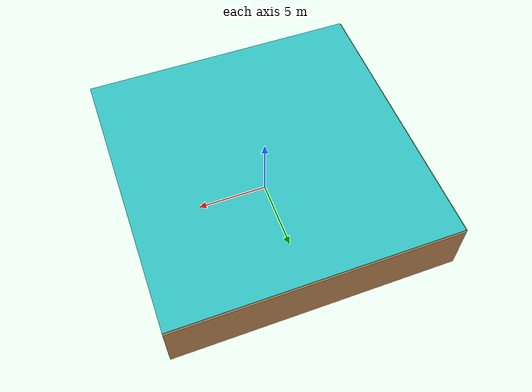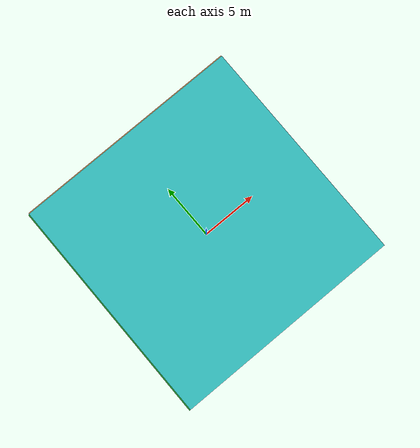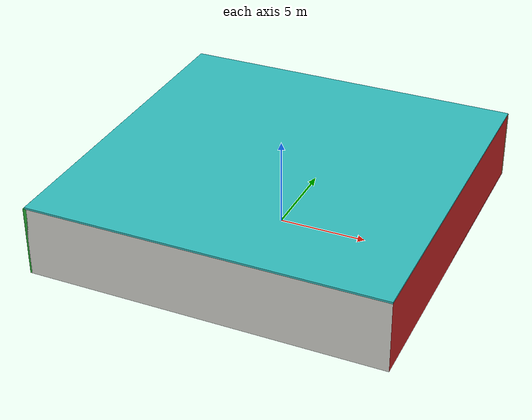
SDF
<sdf version="1.4">
 <world name="default">
  <physics type="ode">
   <max_step_size>0.001</max_step_size>
   <real_time_factor>1</real_time_factor>
   <real_time_update_rate>1000</real_time_update_rate>
   <gravity>0 0 -9.8</gravity>
  </physics>
  <scene><ambient>0.4 0.4 0.4 1</ambient><background>0.7 0.7 0.7 1</background><shadows>1</shadows></scene>
  <model name="Surrounding">
   <static>1</static>
   <link name="Ceiling">
    <collision name="Ceiling_Collision"><geometry><box><size>20 20 0.1</size></box></geometry></collision>
    <visual name="Ceiling_Visual">
     <geometry><box><size>20 20 0.1</size></box></geometry>
     <material>
      <script><uri>file://media/materials/scripts/gazebo.material</uri><name>Gazebo/Turquoise</name></script>
     </material>
    </visual>
    <pose>0 0 4.05 0 0 0</pose>
   </link>
   <link name="Wall_South">
    <collision name="Wall_South_Collision">
     <geometry><box><size>20 0 4</size></box></geometry>
     <pose>0 0 2 0 -0 0</pose>
    </collision>
    <visual name="Wall_South_Visual">
     <pose>0 0 2 0 -0 0</pose>
     <geometry><box><size>20 0 4</size></box></geometry>
     <material>
      <script><uri>file://media/materials/scripts/gazebo.material</uri><name>Gazebo/CeilingTiled</name></script>
     </material>
    </visual>
    <velocity_decay><linear>0</linear><angular>0</angular></velocity_decay>
    <pose>0 -10 0 0 -0 0</pose>
   </link>
   <link name="Wall_East">
    <collision name="Wall_21_Collision">
     <geometry><box><size>20 0 4</size></box></geometry>
     <pose>0 0 2 0 -0 0</pose>
    </collision>
    <visual name="Wall_21_Visual">
     <pose>0 0 2 0 -0 0</pose>
     <geometry><box><size>20 0 4</size></box></geometry>
     <material>
      <script><uri>file://media/materials/scripts/gazebo.material</uri><name>Gazebo/RedGlow</name></script>
     </material>
    </visual>
    <velocity_decay><linear>0</linear><angular>0</angular></velocity_decay>
    <pose>10 0 0 0 -0 1.5708</pose>
   </link>
   <link name="Wall_North">
    <collision name="Wall_22_Collision">
     <geometry><box><size>20 0.2 4</size></box></geometry>
     <pose>0 0 2 0 -0 0</pose>
    </collision>
    <visual name="Wall_22_Visual">
     <pose>0 0 2 0 -0 0</pose>
     <geometry><box><size>20 0.2 4</size></box></geometry>
     <material>
      <script><uri>file://media/materials/scripts/gazebo.material</uri><name>Gazebo/WoodFloor</name></script>
     </material>
    </visual>
    <velocity_decay><linear>0</linear><angular>0</angular></velocity_decay>
    <pose>0 10 0 0 -0 0</pose>
   </link>
   <link name="Wall_West">
    <collision name="Wall_23_Collision">
     <geometry><box><size>20 0.2 4</size></box></geometry>
     <pose>0 0 2 0 -0 0</pose>
    </collision>
    <visual name="Wall_23_Visual">
     <pose>0 0 2 0 -0 0</pose>
     <geometry><box><size>20 0.2 4</size></box></geometry>
     <material>
      <script><uri>file://media/materials/scripts/gazebo.material</uri><name>Gazebo/GreenGlow</name></script>
     </material>
    </visual>
    <velocity_decay><linear>0</linear><angular>0</angular></velocity_decay>
    <pose>-10 0 0 0 0 -1.5708</pose>
   </link>
   <link name="Ground_link">
    <collision name="collision">
     <pose>0 0 .05 0 -0 0</pose>
     <geometry><box><size>20 20 0.1</size></box></geometry>
    </collision>
    <visual name="visual">
     <pose>0 0 .05 0 -0 0</pose>
     <geometry><box><size>20 20 0.1</size></box></geometry>
     <material>
      <script><uri>file://media/materials/scripts/gazebo.material</uri><name>Gazebo/RedBright</name></script>
     </material>
    </visual>
   </link>
   <static>1</static>
  </model>
  <spherical_coordinates>
   <surface_model>EARTH_WGS84</surface_model>
   <latitude_deg>0</latitude_deg>
   <longitude_deg>0</longitude_deg>
   <elevation>0</elevation>
   <heading_deg>0</heading_deg>
  </spherical_coordinates>
  <light name="lightball_0" type="diffuse">
   <diffuse>0.8 0.8 0.8 1</diffuse>
   <specular>0.2 0.2 0.2 1</specular>
   <attenuation>
    <range>100</range>
    <constant>0.7</constant>
    <linear>0.01</linear>
    <quadratic>0.001</quadratic>
   </attenuation>
   <direction>-0.5 0.1 -0.9</direction>
   <pose>8.53068537021 4.15238880416 1.11245289301 0 0 0</pose>
  </light>
  <light name="lightball_1" type="diffuse">
   <diffuse>0.8 0.8 0.8 1</diffuse>
   <specular>0.2 0.2 0.2 1</specular>
   <attenuation>
    <range>100</range>
    <constant>0.7</constant>
    <linear>0.01</linear>
    <quadratic>0.001</quadratic>
   </attenuation>
   <direction>-0.5 0.1 -0.9</direction>
   <pose>-2.32959187122 4.93830129477 0.713931941063 0 0 0</pose>
  </light>
  <light name="lightball_2" type="diffuse">
   <diffuse>0.8 0.8 0.8 1</diffuse>
   <specular>0.2 0.2 0.2 1</specular>
   <attenuation>
    <range>100</range>
    <constant>0.7</constant>
    <linear>0.01</linear>
    <quadratic>0.001</quadratic>
   </attenuation>
   <direction>-0.5 0.1 -0.9</direction>
   <pose>7.49095410421 7.81179085197 2.37465784475 0 0 0</pose>
  </light>
  <light name="lightball_3" type="diffuse">
   <diffuse>0.8 0.8 0.8 1</diffuse>
   <specular>0.2 0.2 0.2 1</specular>
   <attenuation>
    <range>100</range>
    <constant>0.7</constant>
    <linear>0.01</linear>
    <quadratic>0.001</quadratic>
   </attenuation>
   <direction>-0.5 0.1 -0.9</direction>
   <pose>4.52869976792 2.05731473006 1.58881863171 0 0 0</pose>
  </light>
  <light name="lightball_4" type="diffuse">
   <diffuse>0.8 0.8 0.8 1</diffuse>
   <specular>0.2 0.2 0.2 1</specular>
   <attenuation>
    <range>100</range>
    <constant>0.7</constant>
    <linear>0.01</linear>
    <quadratic>0.001</quadratic>
   </attenuation>
   <direction>-0.5 0.1 -0.9</direction>
   <pose>-1.66472047687 -3.08981164547 1.37587169369 0 0 0</pose>
  </light>
  <light name="lightball_5" type="diffuse">
   <diffuse>0.8 0.8 0.8 1</diffuse>
   <specular>0.2 0.2 0.2 1</specular>
   <attenuation>
    <range>100</range>
    <constant>0.7</constant>
    <linear>0.01</linear>
    <quadratic>0.001</quadratic>
   </attenuation>
   <direction>-0.5 0.1 -0.9</direction>
   <pose>1.09946309329 1.08319411017 3.43969618701 0 0 0</pose>
  </light>
  <light name="lightball_6" type="diffuse">
   <diffuse>0.8 0.8 0.8 1</diffuse>
   <specular>0.2 0.2 0.2 1</specular>
   <attenuation>
    <range>100</range>
    <constant>0.7</constant>
    <linear>0.01</linear>
    <quadratic>0.001</quadratic>
   </attenuation>
   <direction>-0.5 0.1 -0.9</direction>
   <pose>-0.115191415529 2.71444041964 0.926525352274 0 0 0</pose>
  </light>
  <light name="lightball_7" type="diffuse">
   <diffuse>0.8 0.8 0.8 1</diffuse>
   <specular>0.2 0.2 0.2 1</specular>
   <attenuation>
    <range>100</range>
    <constant>0.7</constant>
    <linear>0.01</linear>
    <quadratic>0.001</quadratic>
   </attenuation>
   <direction>-0.5 0.1 -0.9</direction>
   <pose>1.06049354904 -9.84340485132 0.518117125237 0 0 0</pose>
  </light>
  <light name="lightball_8" type="diffuse">
   <diffuse>0.8 0.8 0.8 1</diffuse>
   <specular>0.2 0.2 0.2 1</specular>
   <attenuation>
    <range>100</range>
    <constant>0.7</constant>
    <linear>0.01</linear>
    <quadratic>0.001</quadratic>
   </attenuation>
   <direction>-0.5 0.1 -0.9</direction>
   <pose>-3.37721942579 1.41550975358 2.67025091132 0 0 0</pose>
  </light>
  <light name="lightball_9" type="diffuse">
   <diffuse>0.8 0.8 0.8 1</diffuse>
   <specular>0.2 0.2 0.2 1</specular>
   <attenuation>
    <range>100</range>
    <constant>0.7</constant>
    <linear>0.01</linear>
    <quadratic>0.001</quadratic>
   </attenuation>
   <direction>-0.5 0.1 -0.9</direction>
   <pose>-2.50288125958 -1.88816567283 0.624729278979 0 0 0</pose>
  </light>
  <light name="lightball_10" type="diffuse">
   <diffuse>0.8 0.8 0.8 1</diffuse>
   <specular>0.2 0.2 0.2 1</specular>
   <attenuation>
    <range>100</range>
    <constant>0.7</constant>
    <linear>0.01</linear>
    <quadratic>0.001</quadratic>
   </attenuation>
   <direction>-0.5 0.1 -0.9</direction>
   <pose>1.1051534439 7.11760890349 0.810290709913 0 0 0</pose>
  </light>
  <light name="lightball_11" type="diffuse">
   <diffuse>0.8 0.8 0.8 1</diffuse>
   <specular>0.2 0.2 0.2 1</specular>
   <attenuation>
    <range>100</range>
    <constant>0.7</constant>
    <linear>0.01</linear>
    <quadratic>0.001</quadratic>
   </attenuation>
   <direction>-0.5 0.1 -0.9</direction>
   <pose>9.89695327888 8.10906833517 1.10435814395 0 0 0</pose>
  </light>
  <light name="lightball_12" type="diffuse">
   <diffuse>0.8 0.8 0.8 1</diffuse>
   <specular>0.2 0.2 0.2 1</specular>
   <attenuation>
    <range>100</range>
    <constant>0.7</constant>
    <linear>0.01</linear>
    <quadratic>0.001</quadratic>
   </attenuation>
   <direction>-0.5 0.1 -0.9</direction>
   <pose>-7.96951058429 1.81904778556 3.44772751376 0 0 0</pose>
  </light>
  <light name="lightball_13" type="diffuse">
   <diffuse>0.8 0.8 0.8 1</diffuse>
   <specular>0.2 0.2 0.2 1</specular>
   <attenuation>
    <range>100</range>
    <constant>0.7</constant>
    <linear>0.01</linear>
    <quadratic>0.001</quadratic>
   </attenuation>
   <direction>-0.5 0.1 -0.9</direction>
   <pose>-1.60655182272 1.36746335553 1.60514353235 0 0 0</pose>
  </light>
  <include><uri>model://cabinet</uri><pose>0.520294082039 4.33167503709 0 0 0 1.93653938876</pose></include>
  <include>
   <uri>model://construction_cone</uri>
   <pose>5.48544356516 -5.36272679046 0 0 0 0.129334240872</pose>
  </include>
 </world>
</sdf>

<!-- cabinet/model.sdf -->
<sdf version="1.5">
  <model name="cabinet">
    <static>true</static>
    <link name="cabinet_bottom_plate">
      <inertial>
        <pose>0 0 -1 0 0 0</pose>
        <inertia>
          <ixx>2.050000</ixx>
          <ixy>0</ixy>
          <ixz>0</ixz>
          <iyy>2.050000</iyy>
          <iyz>0</iyz>
          <izz>2.050000</izz>
        </inertia>
        <mass>25.000000</mass>
      </inertial>
      <collision name="cabinet_bottom_plate_geom">
        <pose>0 0 0.010000 0 0 0</pose>
        <geometry>
          <box>
            <size>0.450000 0.450000 0.020000</size>
          </box>
        </geometry>
      </collision>
      <visual name="cabinet_bottom_plate_geom_visual">
        <pose>0 0 0.010000 0 0 0</pose>
        <geometry>
          <box>
            <size>0.450000 0.450000 0.020000</size>
          </box>
        </geometry>
        <material>
          <script>
            <uri>model://media/materials/scripts/gazebo.material</uri>
            <name>Gazebo/Wood</name>
          </script>
        </material>
      </visual>
      <collision name="cabinet_bottom_plate_geom_cabinet_back_plate">
        <pose>0.235000 0 0.510000 0 0 0</pose>
        <geometry>
          <box>
            <size>0.020000 0.450000 1.020000</size>
          </box>
        </geometry>
      </collision>
      <visual name="cabinet_bottom_plate_geom_cabinet_back_plate_visual">
        <pose>0.235000 0 0.510000 0 0 0</pose>
        <geometry>
          <box>
            <size>0.020000 0.450000 1.020000</size>
          </box>
        </geometry>
        <material>
          <script>
            <uri>model://media/materials/scripts/gazebo.material</uri>
            <name>Gazebo/Wood</name>
          </script>
        </material>
      </visual>
      <collision name="cabinet_bottom_plate_geom_cabinet_left_plate">
        <pose>0 0.235000 0.510000 0 0 0</pose>
        <geometry>
          <box>
            <size>0.450000 0.020000 1.020000</size>
          </box>
        </geometry>
      </collision>
      <visual name="cabinet_bottom_plate_geom_cabinet_left_plate_visual">
        <pose>0 0.235000 0.510000 0 0 0</pose>
        <geometry>
          <box>
            <size>0.450000 0.020000 1.020000</size>
          </box>
        </geometry>
        <material>
          <script>
            <uri>model://media/materials/scripts/gazebo.material</uri>
            <name>Gazebo/Wood</name>
          </script>
        </material>
      </visual>
      <collision name="cabinet_bottom_plate_geom_cabinet_middle_plate">
        <pose>0 0 0.510000 0 0 0</pose>
        <geometry>
          <box>
            <size>0.450000 0.450000 0.020000</size>
          </box>
        </geometry>
      </collision>
      <visual name="cabinet_bottom_plate_geom_cabinet_middle_plate_visual">
        <pose>0 0 0.510000 0 0 0</pose>
        <geometry>
          <box>
            <size>0.450000 0.450000 0.020000</size>
          </box>
        </geometry>
        <material>
          <script>
            <uri>model://media/materials/scripts/gazebo.material</uri>
            <name>Gazebo/Wood</name>
          </script>
        </material>
      </visual>
      <collision name="cabinet_bottom_plate_geom_cabinet_right_plate">
        <pose>0 -0.235000 0.510000 0 0 0</pose>
        <geometry>
          <box>
            <size>0.450000 0.020000 1.020000</size>
          </box>
        </geometry>
      </collision>
      <visual name="cabinet_bottom_plate_geom_cabinet_right_plate_visual">
        <pose>0 -0.235000 0.510000 0 0 0</pose>
        <geometry>
          <box>
            <size>0.450000 0.020000 1.020000</size>
          </box>
        </geometry>
        <material>
          <script>
            <uri>model://media/materials/scripts/gazebo.material</uri>
            <name>Gazebo/Wood</name>
          </script>
        </material>
      </visual>
      <collision name="cabinet_bottom_plate_geom_cabinet_top_plate">
        <pose>0 0 1.010000 0 0 0</pose>
        <geometry>
          <box>
            <size>0.450000 0.450000 0.020000</size>
          </box>
        </geometry>
      </collision>
      <visual name="cabinet_bottom_plate_geom_cabinet_top_plate_visual">
        <pose>0 0 1.010000 0 0 0</pose>
        <geometry>
          <box>
            <size>0.450000 0.450000 0.020000</size>
          </box>
        </geometry>
        <material>
          <script>
            <uri>model://media/materials/scripts/gazebo.material</uri>
            <name>Gazebo/Wood</name>
          </script>
        </material>
      </visual>
    </link>
  </model>
</sdf>

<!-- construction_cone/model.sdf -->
<sdf version="1.5">
  <model name="Construction Cone">
    <link name="link">
      <collision name="collision">
        <geometry>
          <mesh>
            <scale>10 10 10</scale>
            <uri>file://isr-testbed/construction_cone/meshes/construction_cone.dae</uri>
          </mesh>
        </geometry>
      </collision>
      <visual name="visual">
        <geometry>
          <mesh>
            <scale>10 10 10</scale>
            <uri>file://isr-testbed/construction_cone/meshes/construction_cone.dae</uri>
          </mesh>
        </geometry>
      </visual>
    </link>
  </model>
</sdf>
